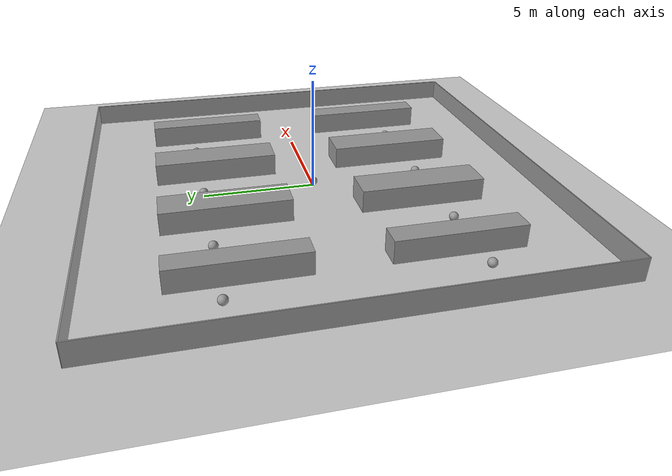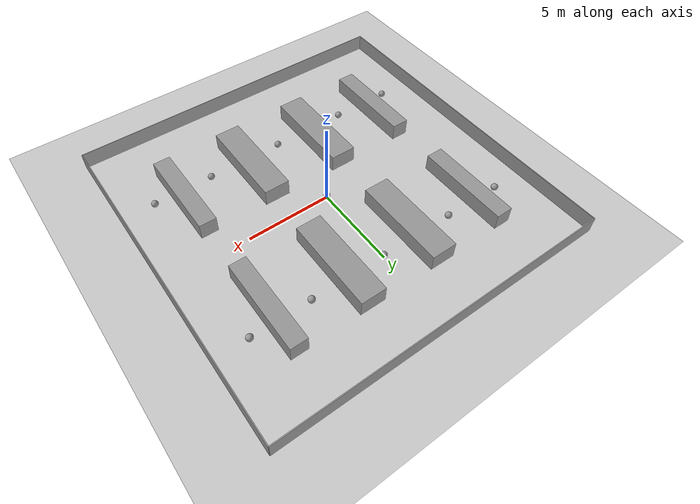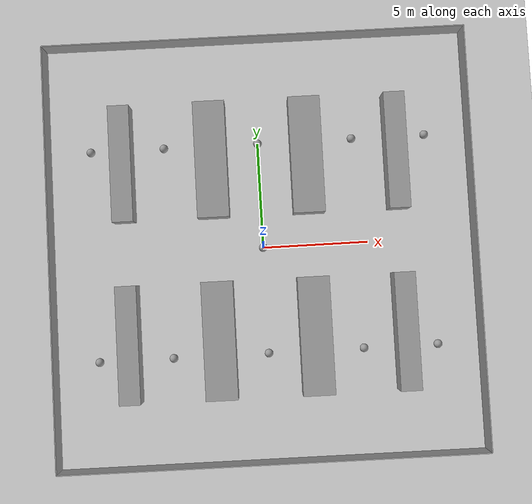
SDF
<sdf version="1.4">
 <world name="default">
  <light name="sun" type="directional">
   <pose>0 0 10 0 -0 0</pose>
   <diffuse>0.8 0.8 0.8 1</diffuse>
   <specular>0.2 0.2 0.2 1</specular>
   <attenuation>
    <range>1000</range>
    <constant>0.9</constant>
    <linear>0.01</linear>
    <quadratic>0.001</quadratic>
   </attenuation>
   <direction>0.5 0.1 -0.9</direction>
  </light>
  <scene><ambient>0.4 0.4 0.4 1</ambient><background>0.7 0.7 0.7 1</background><shadows>0</shadows></scene>
  <physics type="ode">
   <max_step_size>0.01</max_step_size>
   <real_time_factor>25</real_time_factor>
   <real_time_update_rate>2500</real_time_update_rate>
   <gravity>0 0 -9.8</gravity>
  </physics>
  <include><uri>model://ground_plane</uri></include>
  <include><uri>model://project_warehouse</uri><pose>0 0 0 0 0 1.567</pose></include>
  <model name="obstacle_0"><include><uri>model://project_ball</uri></include><pose>8 5 0 0 0 0</pose></model>
  <model name="obstacle_1"><include><uri>model://project_ball</uri></include><pose>8 -5 0 0 0 0</pose></model>
  <model name="obstacle_2"><include><uri>model://project_ball</uri></include><pose>4.5 5 0 0 0 0</pose></model>
  <model name="obstacle_3"><include><uri>model://project_ball</uri></include><pose>4.5 -5 0 0 0 0</pose></model>
  <model name="obstacle_4"><include><uri>model://project_ball</uri></include><pose>0 5 0 0 0 0</pose></model>
  <model name="obstacle_5"><include><uri>model://project_ball</uri></include><pose>0 -5 0 0 0 0</pose></model>
  <model name="obstacle_6"><include><uri>model://project_ball</uri></include><pose>-4.5 5 0 0 0 0</pose></model>
  <model name="obstacle_7">
   <include><uri>model://project_ball</uri></include>
   <pose>-4.5 -5 0 0 0 0</pose>
  </model>
  <model name="obstacle_8"><include><uri>model://project_ball</uri></include><pose>-8 5 0 0 0 0</pose></model>
  <model name="obstacle_9"><include><uri>model://project_ball</uri></include><pose>-8 -5 0 0 0 0</pose></model>
  <model name="obstacle_10"><include><uri>model://project_ball</uri></include></model>
 </world>
</sdf>

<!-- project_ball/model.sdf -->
<sdf version='1.5'>
  <model name='project_ball'>
    <pose frame=''>0 0 0 0 0 0</pose>
    <link name='ball'>
      <inertial>
        <mass>1.0</mass>
        <inertia>
          <ixx>0.016</ixx>
          <ixy>0.0</ixy>
          <ixz>0.0</ixz>
          <iyy>0.016</iyy>
          <iyz>0.0</iyz>
          <izz>0.016</izz>
        </inertia>
      </inertial>
      <collision name='ball_Collision'>
        <geometry>
          <sphere>
            <radius>0.2</radius>
          </sphere>
        </geometry>
        <pose frame=''>0 0 0.2 0 0 0</pose>
        <surface>
          <friction>
            <ode>
              <mu>0</mu>
              <mu2>0</mu2>
              <slip1>0</slip1>
              <slip2>0</slip2>
            </ode>
          </friction>
        </surface>
      </collision>
      <visual name='ball_Visual'>
        <geometry>
          <sphere>
            <radius>0.2</radius>
          </sphere>
        </geometry>
        <material>
          <script>
            <uri>file://media/materials/scripts/gazebo.material</uri>
            <name>Gazebo/Grey</name>
          </script>
          <ambient>1 1 1 1</ambient>
        </material>
        <pose frame=''>0 0 0.2 0 0 0</pose>
      </visual>
    </link>
    <static>0</static>
  </model>
</sdf>

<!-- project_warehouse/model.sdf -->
<sdf version='1.5'>
  <model name='project_wall'>
    <pose frame=''>0 0 0 0 0 0</pose>
    <link name='Wall_1'>
      <collision name='Wall_1_Collision'>
        <geometry>
          <box>
            <size>20 0.05 1</size>
          </box>
        </geometry>
        <pose frame=''>0 0 0.5 0 0 0</pose>
        <surface>
          <friction>
            <ode>
              <mu>0</mu>
              <mu2>0</mu2>
              <slip1>0</slip1>
              <slip2>0</slip2>
            </ode>
          </friction>
        </surface>
      </collision>
      <visual name='Wall_1_Visual'>
        <pose frame=''>0 0 0.5 0 0 0</pose>
        <geometry>
          <box>
            <size>20 0.05 1</size>
          </box>
        </geometry>
        <material>
          <script>
            <uri>file://media/materials/scripts/gazebo.material</uri>
            <name>Gazebo/Grey</name>
          </script>
          <ambient>1 1 1 1</ambient>
        </material>
      </visual>
      <pose frame=''>0 10 0 0 0 0</pose>
    </link>
    <link name='Wall_2'>
      <collision name='Wall_2_Collision'>
        <geometry>
          <box>
            <size>20 0.05 1</size>
          </box>
        </geometry>
        <pose frame=''>0 0 0.5 0 0 0</pose>
        <surface>
          <friction>
            <ode>
              <mu>0</mu>
              <mu2>0</mu2>
              <slip1>0</slip1>
              <slip2>0</slip2>
            </ode>
          </friction>
        </surface>
      </collision>
      <visual name='Wall_2_Visual'>
        <pose frame=''>0 0 0.5 0 0 0</pose>
        <geometry>
          <box>
            <size>20 0.05 1</size>
          </box>
        </geometry>
        <material>
          <script>
            <uri>file://media/materials/scripts/gazebo.material</uri>
            <name>Gazebo/Grey</name>
          </script>
          <ambient>1 1 1 1</ambient>
        </material>
      </visual>
      <pose frame=''>0 -10 0 0 0 0</pose>
    </link>
    <link name='Wall_3'>
      <collision name='Wall_3_Collision'>
        <geometry>
          <box>
            <size>20 0.05 1</size>
          </box>
        </geometry>
        <pose frame=''>0 0 0.5 0 0 0</pose>
        <surface>
          <friction>
            <ode>
              <mu>0</mu>
              <mu2>0</mu2>
              <slip1>0</slip1>
              <slip2>0</slip2>
            </ode>
          </friction>
        </surface>
      </collision>
      <visual name='Wall_3_Visual'>
        <pose frame=''>0 0 0.5 0 0 0</pose>
        <geometry>
          <box>
            <size>20 0.05 1</size>
          </box>
        </geometry>
        <material>
          <script>
            <uri>file://media/materials/scripts/gazebo.material</uri>
            <name>Gazebo/Grey</name>
          </script>
          <ambient>1 1 1 1</ambient>
        </material>
      </visual>
      <pose frame=''>10 0 0 0 0 1.5708</pose>
    </link>
    <link name='Wall_4'>
      <collision name='Wall_4_Collision'>
        <geometry>
          <box>
            <size>20 0.05 1</size>
          </box>
        </geometry>
        <pose frame=''>0 0 0.5 0 0 0</pose>
        <surface>
          <friction>
            <ode>
              <mu>0</mu>
              <mu2>0</mu2>
              <slip1>0</slip1>
              <slip2>0</slip2>
            </ode>
          </friction>
        </surface>
      </collision>
      <visual name='Wall_4_Visual'>
        <pose frame=''>0 0 0.5 0 0 0</pose>
        <geometry>
          <box>
            <size>20 0.05 1</size>
          </box>
        </geometry>
        <material>
          <script>
            <uri>file://media/materials/scripts/gazebo.material</uri>
            <name>Gazebo/Grey</name>
          </script>
          <ambient>1 1 1 1</ambient>
        </material>
      </visual>
      <pose frame=''>-10 0 0 0 0 1.5708</pose>
    </link>

    <!-- Shelves -->
    <link name='shelf_1'>
      <collision name='shelf_1_Collision'>
        <geometry>
          <box>
            <size>5.5 1 1</size>
          </box>
        </geometry>
        <pose frame=''>0 0 0.5 0 0 0</pose>
        <surface>
          <friction>
            <ode>
              <mu>0</mu>
              <mu2>0</mu2>
              <slip1>0</slip1>
              <slip2>0</slip2>
            </ode>
          </friction>
        </surface>
      </collision>
      <visual name='shelf_1_Visual'>
        <pose frame=''>0 0 0.5 0 0 0</pose>
        <geometry>
          <box>
            <size>5.5 1 1</size>
          </box>
        </geometry>
        <material>
          <script>
            <uri>file://media/materials/scripts/gazebo.material</uri>
            <name>Gazebo/Grey</name>
          </script>
          <ambient>1 1 1 1</ambient>
        </material>
      </visual>
      <pose frame=''>4.25 6.5 0 0 0 0</pose>
    </link>
    <link name='shelf_2'>
      <collision name='shelf_2_Collision'>
        <geometry>
          <box>
            <size>5.5 1 1</size>
          </box>
        </geometry>
        <pose frame=''>0 0 0.5 0 0 0</pose>
        <surface>
          <friction>
            <ode>
              <mu>0</mu>
              <mu2>0</mu2>
              <slip1>0</slip1>
              <slip2>0</slip2>
            </ode>
          </friction>
        </surface>
      </collision>
      <visual name='shelf_2_Visual'>
        <pose frame=''>0 0 0.5 0 0 0</pose>
        <geometry>
          <box>
            <size>5.5 1 1</size>
          </box>
        </geometry>
        <material>
          <script>
            <uri>file://media/materials/scripts/gazebo.material</uri>
            <name>Gazebo/Grey</name>
          </script>
          <ambient>1 1 1 1</ambient>
        </material>
      </visual>
      <pose frame=''>-4.25 6.5 0 0 0 0</pose>
    </link>

    <link name='shelf_3'>
      <collision name='shelf_3_Collision'>
        <geometry>
          <box>
            <size>5.5 1.5 1</size>
          </box>
        </geometry>
        <pose frame=''>0 0 0.5 0 0 0</pose>
        <surface>
          <friction>
            <ode>
              <mu>0</mu>
              <mu2>0</mu2>
              <slip1>0</slip1>
              <slip2>0</slip2>
            </ode>
          </friction>
        </surface>
      </collision>
      <visual name='shelf_3_Visual'>
        <pose frame=''>0 0 0.5 0 0 0</pose>
        <geometry>
          <box>
            <size>5.5 1.5 1</size>
          </box>
        </geometry>
        <material>
          <script>
            <uri>file://media/materials/scripts/gazebo.material</uri>
            <name>Gazebo/Grey</name>
          </script>
          <ambient>1 1 1 1</ambient>
        </material>
      </visual>
      <pose frame=''>4.25 2.25 0 0 0 0</pose>
    </link>
    <link name='shelf_4'>
      <collision name='shelf_4_Collision'>
        <geometry>
          <box>
            <size>5.5 1.5 1</size>
          </box>
        </geometry>
        <pose frame=''>0 0 0.5 0 0 0</pose>
        <surface>
          <friction>
            <ode>
              <mu>0</mu>
              <mu2>0</mu2>
              <slip1>0</slip1>
              <slip2>0</slip2>
            </ode>
          </friction>
        </surface>
      </collision>
      <visual name='shelf_4_Visual'>
        <pose frame=''>0 0 0.5 0 0 0</pose>
        <geometry>
          <box>
            <size>5.5 1.5 1</size>
          </box>
        </geometry>
        <material>
          <script>
            <uri>file://media/materials/scripts/gazebo.material</uri>
            <name>Gazebo/Grey</name>
          </script>
          <ambient>1 1 1 1</ambient>
        </material>
      </visual>
      <pose frame=''>-4.25 2.25 0 0 0 0</pose>
    </link>

    <link name='shelf_5'>
      <collision name='shelf_5_Collision'>
        <geometry>
          <box>
            <size>5.5 1.5 1</size>
          </box>
        </geometry>
        <pose frame=''>0 0 0.5 0 0 0</pose>
        <surface>
          <friction>
            <ode>
              <mu>0</mu>
              <mu2>0</mu2>
              <slip1>0</slip1>
              <slip2>0</slip2>
            </ode>
          </friction>
        </surface>
      </collision>
      <visual name='shelf_5_Visual'>
        <pose frame=''>0 0 0.5 0 0 0</pose>
        <geometry>
          <box>
            <size>5.5 1.5 1</size>
          </box>
        </geometry>
        <material>
          <script>
            <uri>file://media/materials/scripts/gazebo.material</uri>
            <name>Gazebo/Grey</name>
          </script>
          <ambient>1 1 1 1</ambient>
        </material>
      </visual>
      <pose frame=''>4.25 -2.25 0 0 0 0</pose>
    </link>
    <link name='shelf_6'>
      <collision name='shelf_6_Collision'>
        <geometry>
          <box>
            <size>5.5 1.5 1</size>
          </box>
        </geometry>
        <pose frame=''>0 0 0.5 0 0 0</pose>
        <surface>
          <friction>
            <ode>
              <mu>0</mu>
              <mu2>0</mu2>
              <slip1>0</slip1>
              <slip2>0</slip2>
            </ode>
          </friction>
        </surface>
      </collision>
      <visual name='shelf_6_Visual'>
        <pose frame=''>0 0 0.5 0 0 0</pose>
        <geometry>
          <box>
            <size>5.5 1.5 1</size>
          </box>
        </geometry>
        <material>
          <script>
            <uri>file://media/materials/scripts/gazebo.material</uri>
            <name>Gazebo/Grey</name>
          </script>
          <ambient>1 1 1 1</ambient>
        </material>
      </visual>
      <pose frame=''>-4.25 -2.25 0 0 0 0</pose>
    </link>

    <link name='shelf_7'>
      <collision name='shelf_7_Collision'>
        <geometry>
          <box>
            <size>5.5 1 1</size>
          </box>
        </geometry>
        <pose frame=''>0 0 0.5 0 0 0</pose>
        <surface>
          <friction>
            <ode>
              <mu>0</mu>
              <mu2>0</mu2>
              <slip1>0</slip1>
              <slip2>0</slip2>
            </ode>
          </friction>
        </surface>
      </collision>
      <visual name='shelf_7_Visual'>
        <pose frame=''>0 0 0.5 0 0 0</pose>
        <geometry>
          <box>
            <size>5.5 1 1</size>
          </box>
        </geometry>
        <material>
          <script>
            <uri>file://media/materials/scripts/gazebo.material</uri>
            <name>Gazebo/Grey</name>
          </script>
          <ambient>1 1 1 1</ambient>
        </material>
      </visual>
      <pose frame=''>4.25 -6.5 0 0 0 0</pose>
    </link>
    <link name='shelf_8'>
      <collision name='shelf_8_Collision'>
        <geometry>
          <box>
            <size>5.5 1 1</size>
          </box>
        </geometry>
        <pose frame=''>0 0 0.5 0 0 0</pose>
        <surface>
          <friction>
            <ode>
              <mu>0</mu>
              <mu2>0</mu2>
              <slip1>0</slip1>
              <slip2>0</slip2>
            </ode>
          </friction>
        </surface>
      </collision>
      <visual name='shelf_8_Visual'>
        <pose frame=''>0 0 0.5 0 0 0</pose>
        <geometry>
          <box>
            <size>5.5 1 1</size>
          </box>
        </geometry>
        <material>
          <script>
            <uri>file://media/materials/scripts/gazebo.material</uri>
            <name>Gazebo/Grey</name>
          </script>
          <ambient>1 1 1 1</ambient>
        </material>
      </visual>
      <pose frame=''>-4.25 -6.5 0 0 0 0</pose>
    </link>

    <static>1</static>
  </model>
</sdf>
